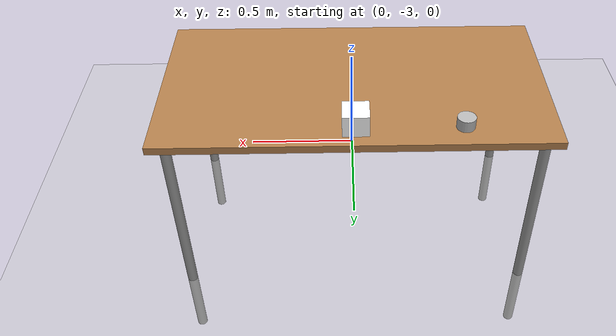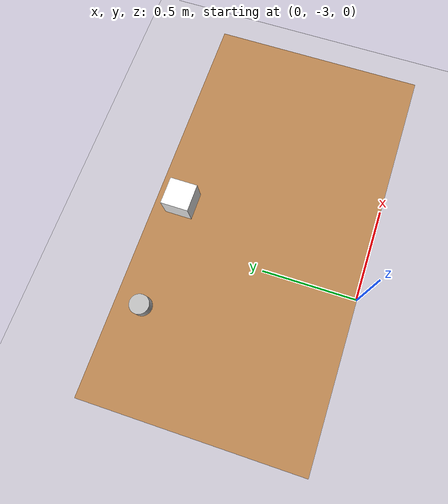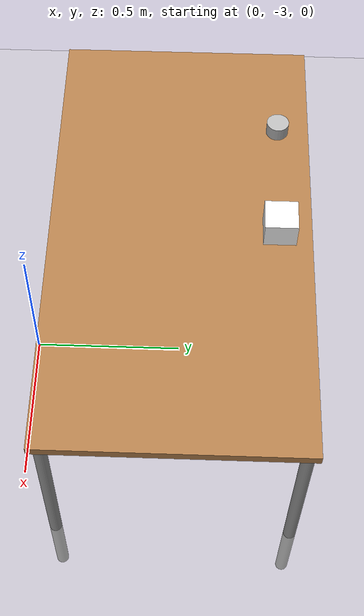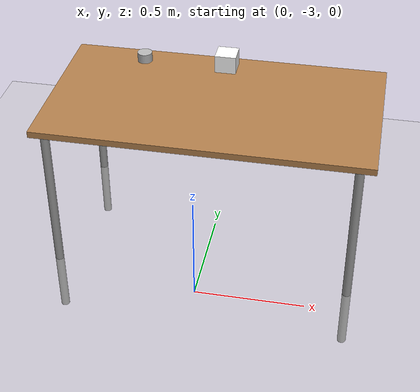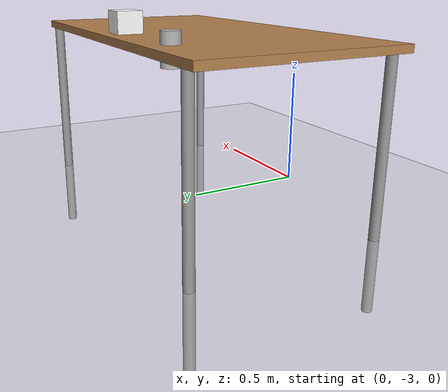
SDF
<sdf version="1.4">
 <world name="default">
  <scene><ambient>0.68 0.68 0.68 1.0</ambient><sky><clouds><speed>12</speed></clouds></sky></scene>
  <physics type="ode">
   <max_step_size>0.001</max_step_size>
   <real_time_factor>1</real_time_factor>
   <real_time_update_rate>1000</real_time_update_rate>
   <gravity>0 0 -9.8</gravity>
  </physics>
  <include><uri>model://ISCAS_groundplane</uri></include>
  <include><uri>model://sun</uri></include>
  <include><uri>model://table</uri><static>true</static><pose>0 -2.5 -0.3 0 0 0</pose></include>
  <include><uri>model://wood_cube_10cm</uri><static>true</static><pose>0 -2.2 0.7 0 0 0</pose></include>
  <include><uri>model://beer</uri><pose>-0.4 -2.2 0.7 0 0 0</pose></include>
 </world>
</sdf>

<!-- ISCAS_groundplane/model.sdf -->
<sdf version="1.4">
  <model name="ISCAS_groundplane">
    <static>true</static>
    <link name="link">
      <collision name="collision">
        <geometry>
          <plane>
            <normal>0 0 1</normal>
            <size>30 30</size>
          </plane>
        </geometry>
        <surface>
          <friction>
            <ode>
              <mu>100000</mu>
              <mu2>10000</mu2>
            </ode>
          </friction>
        </surface>
      </collision>
      <visual name="visual">
        <cast_shadows>false</cast_shadows>
        <geometry>
          <plane>
            <normal>0 0 1</normal>
            <size>30 30</size>
          </plane>
        </geometry>
        <material>
          <script>
            <uri>model://ISCAS_groundplane/materials/scripts</uri>
            <uri>model://ISCAS_groundplane/materials/textures</uri>
            <name>ISCAS_groundplane/Image </name>
          </script>
        </material>
      </visual>
    </link>
  </model>
</sdf>

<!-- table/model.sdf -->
<sdf version="1.5">
  <model name="table">
    <static>true</static>
    <link name="link">
      <collision name="surface">
        <pose>0 0 1.0 0 0 0</pose>
        <geometry>
          <box>
            <size>1.5 0.8 0.03</size>
          </box>
        </geometry>
        <surface>
          <friction>
            <ode>
              <mu>0.6</mu>
              <mu2>0.6</mu2>
            </ode>
          </friction>
        </surface>
      </collision>
      <visual name="visual1">
        <pose>0 0 1.0 0 0 0</pose>
        <geometry>
          <box>
            <size>1.5 0.8 0.03</size>
          </box>
        </geometry>
        <material>
          <script>
            <uri>model://media/materials/scripts/gazebo.material</uri>
            <name>Gazebo/Wood</name>
          </script>
        </material>
      </visual>
      <collision name="front_left_leg">
        <pose>0.68 0.38 0.5 0 0 0</pose>
        <geometry>
          <cylinder>
            <radius>0.02</radius>
            <length>1.0</length>
          </cylinder>
        </geometry>
      </collision>
      <visual name="front_left_leg">
        <pose>0.68 0.38 0.5 0 0 0</pose>
        <geometry>
          <cylinder>
            <radius>0.02</radius>
            <length>1.0</length>
          </cylinder>
        </geometry>
        <material>
          <script>
            <uri>model://media/materials/scripts/gazebo.material</uri>
            <name>Gazebo/Grey</name>
          </script>
        </material>
      </visual>
      <collision name="front_right_leg">
        <pose>0.68 -0.38 0.5 0 0 0</pose>
        <geometry>
          <cylinder>
            <radius>0.02</radius>
            <length>1.0</length>
          </cylinder>
        </geometry>
      </collision>
      <visual name="front_right_leg">
        <pose>0.68 -0.38 0.5 0 0 0</pose>
        <geometry>
          <cylinder>
            <radius>0.02</radius>
            <length>1.0</length>
          </cylinder>
        </geometry>
        <material>
          <script>
            <uri>model://media/materials/scripts/gazebo.material</uri>
            <name>Gazebo/Grey</name>
          </script>
        </material>
      </visual>
      <collision name="back_right_leg">
        <pose>-0.68 -0.38 0.5 0 0 0</pose>
        <geometry>
          <cylinder>
            <radius>0.02</radius>
            <length>1.0</length>
          </cylinder>
        </geometry>
      </collision>
      <visual name="back_right_leg">
        <pose>-0.68 -0.38 0.5 0 0 0</pose>
        <geometry>
          <cylinder>
            <radius>0.02</radius>
            <length>1.0</length>
          </cylinder>
        </geometry>
        <material>
          <script>
            <uri>model://media/materials/scripts/gazebo.material</uri>
            <name>Gazebo/Grey</name>
          </script>
        </material>
      </visual>
      <collision name="back_left_leg">
        <pose>-0.68 0.38 0.5 0 0 0</pose>
        <geometry>
          <cylinder>
            <radius>0.02</radius>
            <length>1.0</length>
          </cylinder>
        </geometry>
      </collision>
      <visual name="back_left_leg">
        <pose>-0.68 0.38 0.5 0 0 0</pose>
        <geometry>
          <cylinder>
            <radius>0.02</radius>
            <length>1.0</length>
          </cylinder>
        </geometry>
        <material>
          <script>
            <uri>model://media/materials/scripts/gazebo.material</uri>
            <name>Gazebo/Grey</name>
          </script>
        </material>
      </visual>
    </link>
  </model>
</sdf>

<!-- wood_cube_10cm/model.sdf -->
<sdf version="1.5">
  <model name="wood_cube_10cm">
    <link name="link">
      <pose>0 0 0.05 0 0 0</pose>
      <inertial>
        <mass>0.5167</mass>
        <inertia>
          <ixx>0.0008611666666666669</ixx>
          <ixy>0</ixy>
          <ixz>0</ixz>
          <iyy>0.0008611666666666669</iyy>
          <iyz>0</iyz>
          <izz>0.0008611666666666669</izz>
        </inertia>
      </inertial>

      <collision name="collision">
        <geometry>
          <box>
            <size>0.1 0.1 0.1</size>
          </box>
        </geometry>
        <surface>
          <contact>
            <!-- Red Pine coefficients for longitudinal axis of the wood
                 according to:
                 http://www.fpl.fs.fed.us/documnts/fplgtr/fplgtr113/ch04.pdf -->
            <poissons_ratio>0.347</poissons_ratio>
            <elastic_modulus>8.8e+09</elastic_modulus>
            <ode>
              <kp>100000</kp>
              <kd>100</kd>
              <max_vel>100.0</max_vel>
              <min_depth>0.001</min_depth>
            </ode>
          </contact>
          <friction>
            <torsional>
              <coefficient>1.0</coefficient>
              <use_patch_radius>0</use_patch_radius>
              <surface_radius>0.01</surface_radius>
            </torsional>
          </friction>
        </surface>
      </collision>

      <visual name="visual">
        <geometry>
          <box>
            <size>0.1 0.1 0.1</size>
          </box>
        </geometry>
        <material><diffuse>1 1 1 1</diffuse><specular>0.1 0.1 0.1 1</specular></material>
      </visual>

    </link>
  </model>
</sdf>

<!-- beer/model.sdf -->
<sdf version='1.4'>
  <model name="beer">
    <link name='link'>
      <pose>0 0 0 0 0 0</pose>
      <inertial>
        <mass>0.390</mass>
        <inertia>
          <ixx>0.00058</ixx>
          <ixy>0</ixy>
          <ixz>0</ixz>
          <iyy>0.00058</iyy>
          <iyz>0</iyz>
          <izz>0.00025</izz>
        </inertia>
      </inertial>
      <collision name='collision'>
        <geometry>
          <cylinder>
            <radius>0.03500</radius>
            <length>0.12000</length>
          </cylinder>
        </geometry>
      </collision>

      <visual name='visual'>
        <geometry>
          <cylinder>
            <radius>0.03500</radius>
            <length>0.12000</length>
          </cylinder>
        </geometry>

        <material>
          <script>
            <uri>model://beer/materials/scripts</uri>
            <uri>model://beer/materials/textures</uri>
            <name>Beer/Diffuse</name>
          </script>
        </material>
      </visual>
    </link>
  </model>
</sdf>
